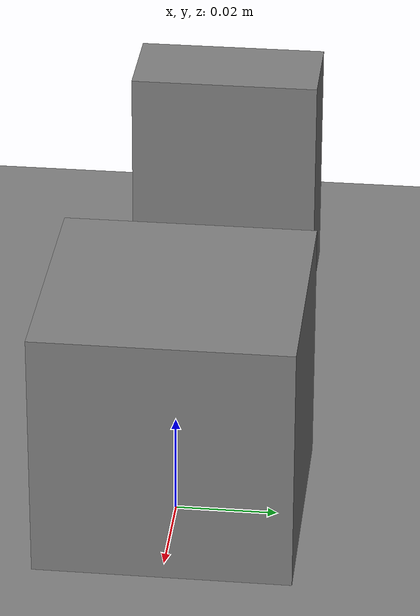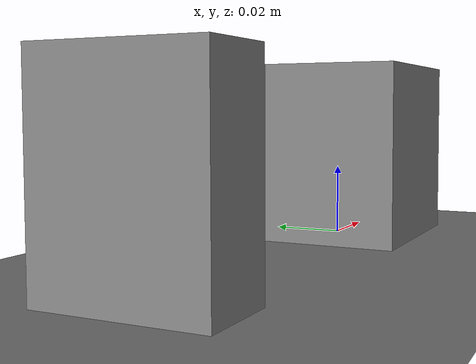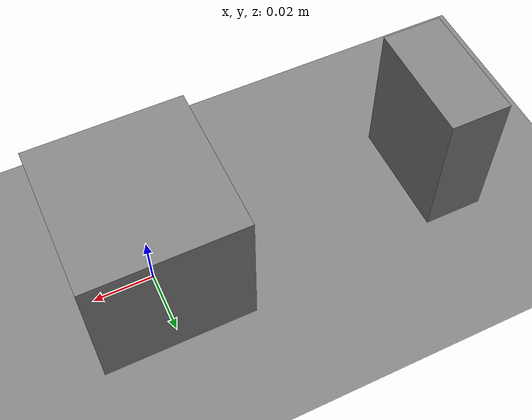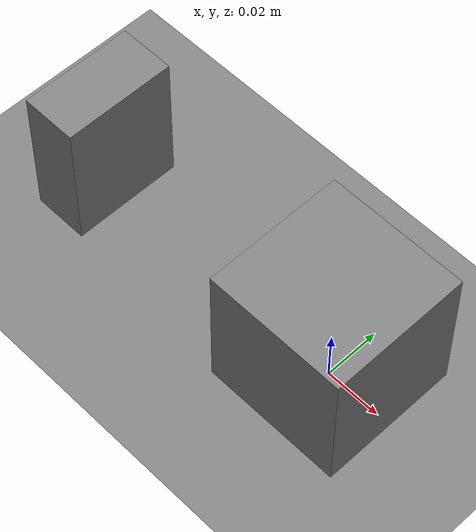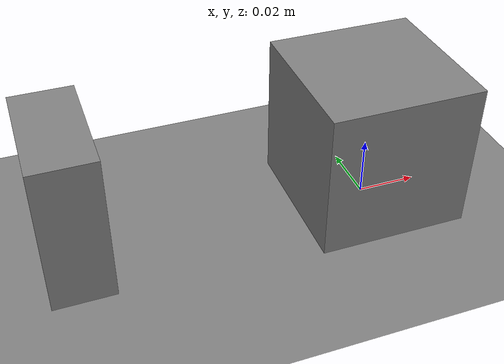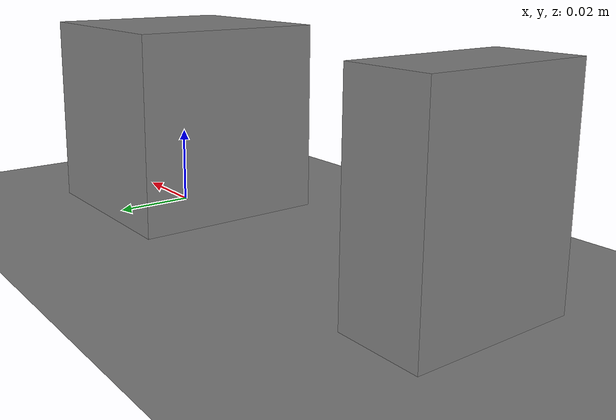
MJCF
<mujoco>
  <option timestep="0.002" gravity="0 0 -9.81"/>
  <worldbody>
    <geom name="table" type="plane" size="1 1 0.1"/>
    <body name="pusher" pos="-0.1 0 0.025">
      <joint name="slide_x" type="slide" axis="1 0 0"/>
      <geom name="pusher_geom" type="box" size="0.01 0.02 0.025" mass="0.5"/>
    </body>
    <body name="target" pos="0.0 0 0.025">
      <freejoint name="target_free"/>
      <geom name="target_geom" type="box" size="0.025 0.025 0.025" mass="0.05"/>
    </body>
  </worldbody>
  <actuator>
    <position name="slide_act" joint="slide_x" kp="200"/>
  </actuator>
</mujoco>
